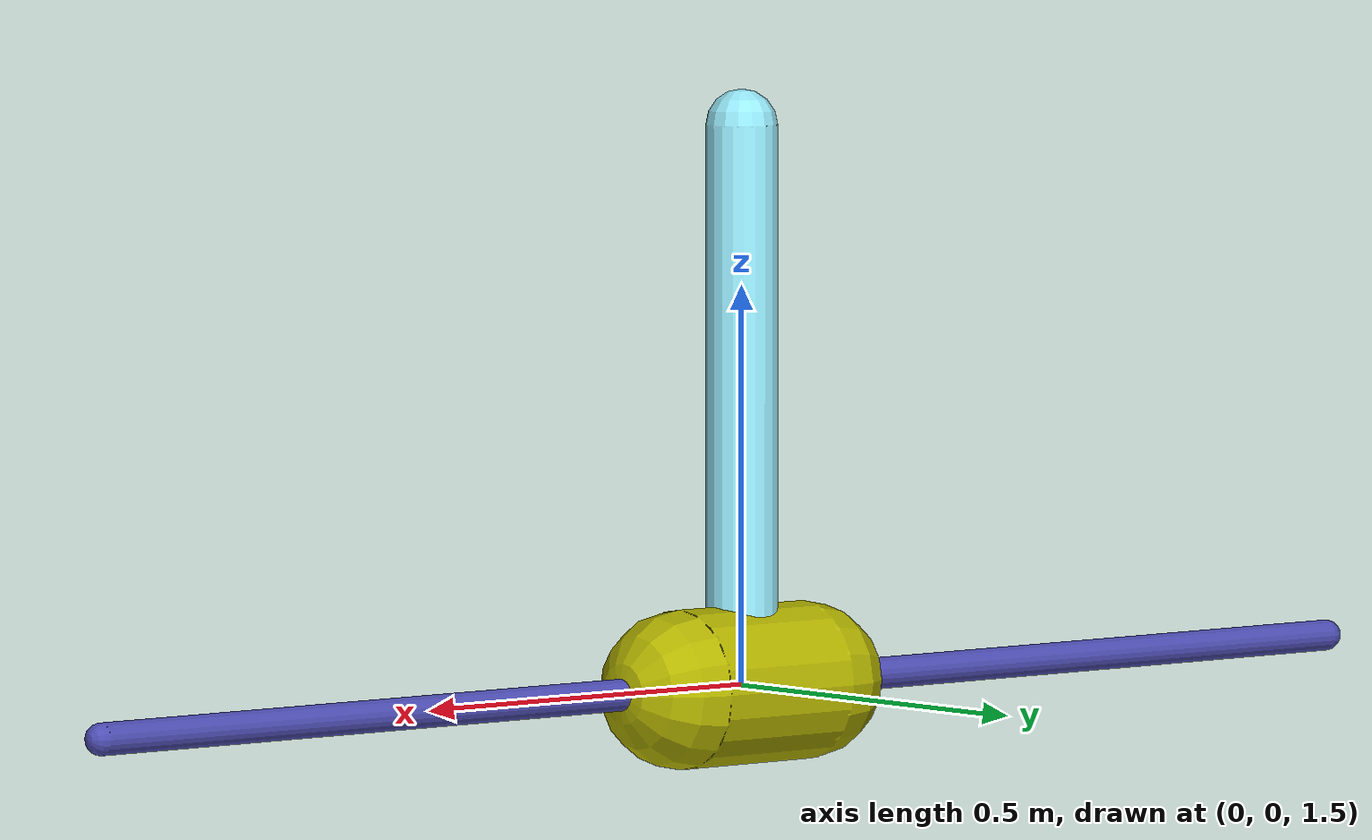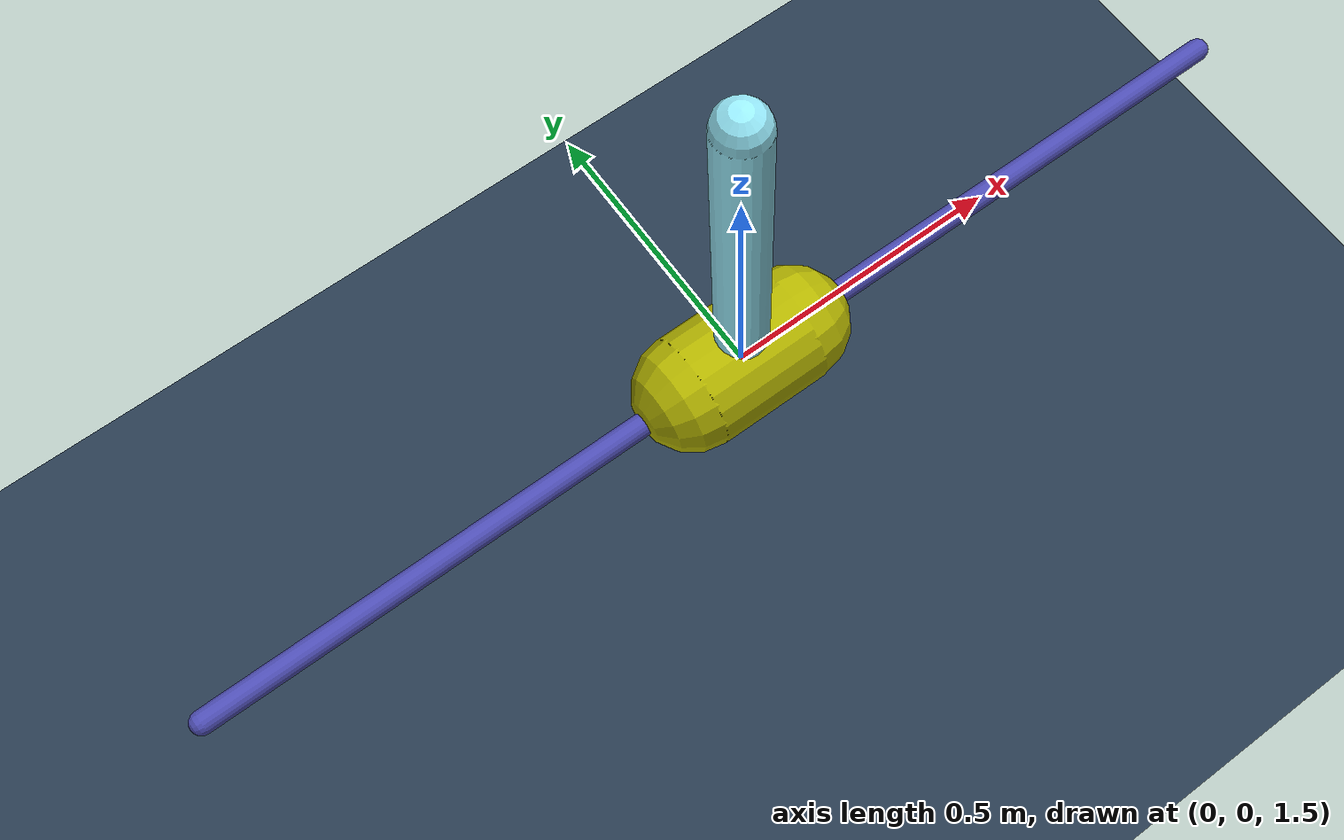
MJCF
<mujoco model="double_pendulum">
    <include file="../worlds/world.xml"/>
    <compiler coordinate="local" inertiafromgeom="true"/>
    <default>
        <joint damping="0"/>
        <geom contype="0" friction="0 0 0"/>
    </default>
    <option gravity="0 0 -9.81" integrator="RK4"/>
    <size nstack="3000"/>
    <worldbody>
        <geom name="rail" pos="0 0 1.5" quat="0.707 0 0.707 0" rgba="0.3 0.3 0.7 1" size="0.02 1" type="capsule"/>
        <body name="cart" pos="0 0 1.5">
            <geom name="cart" pos="0 0 0" quat="0.707 0 0.707 0" size="0.1 0.1" type="capsule" rgba="0.7 0.7 0 1"/>
            <site name="cart_0" pos="0 0 0" size="0.01 0.01"/>
            <site name="cart_1" pos="0 0 0" size="0.01 0.01"/>
            <body name="pole1" pos="0 0 0">
                <joint axis="0 1 0" name="pendulum1" pos="0 0 0" type="hinge"/>
                <geom fromto="0 0 0 0 0 0.7" name="cpole1" rgba="0.588 0.909 0.972 1" size="0.045 0.35" type="capsule" mass="2"/>
                <site name="pole1_0" pos="0 0 0" size="0.01 0.01"/>
                <site name="pole1_1" pos="0 0 .7" size="0.01 0.01"/>
                <site name="tip" pos="0 0 .7" size="0.01 0.01"/>
            </body>
        </body>
    </worldbody>
    <actuator>
        <motor name="pendulum1_motor" joint="pendulum1" forcerange="-50 50" ctrlrange="-20 20"/>
    </actuator>
</mujoco>

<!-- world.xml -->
<mujoco>
    <statistic extent="2" meansize=".05"/>
    <option timestep="0.001" solver="Newton" iterations="50" tolerance="1e-5" jacobian="sparse" cone="pyramidal" gravity='0 0 -9.81'/>

    <visual>
        <rgba haze="0.15 0.25 0.35 1"/>
        <quality shadowsize="2048"/>
        <map stiffness="700" shadowscale="0.5" fogstart="10" fogend="15" zfar="40" haze="0.3"/>
        <headlight ambient=".2 .2 .2" diffuse=".8 .8 .8" specular="0.1 0.1 0.1"/>
    </visual>

    <asset>
        <texture name="skybox" type="skybox" builtin="gradient" rgb1=".1 .1 .30" rgb2="0 0 0" width="800" height="800" mark="random" markrgb="1 1 1"/>
        <texture name="texplane" type="2d" builtin="checker" rgb1=".2 .3 .4" rgb2=".1 0.15 0.2"
            width="512" height="512" mark="cross" markrgb=".8 .8 .8"/>
        <material name="matplane" reflectance="0.0" texture="texplane" texrepeat="1 1" texuniform="true"/>
    </asset>

    <worldbody>
        <geom name="ground" type="plane" size="0 0 1" pos="0 0 0" quat="1 0 0 0" material="matplane" condim="6"/>
        <light mode='trackcom' pos='0 0 5' dir='0 0 -1'/>
        <light directional='true' pos='0 0 3' dir='0 0 -1' diffuse='0.2 0.2 0.2' specular='0 0 0'/>
    </worldbody>
</mujoco>
